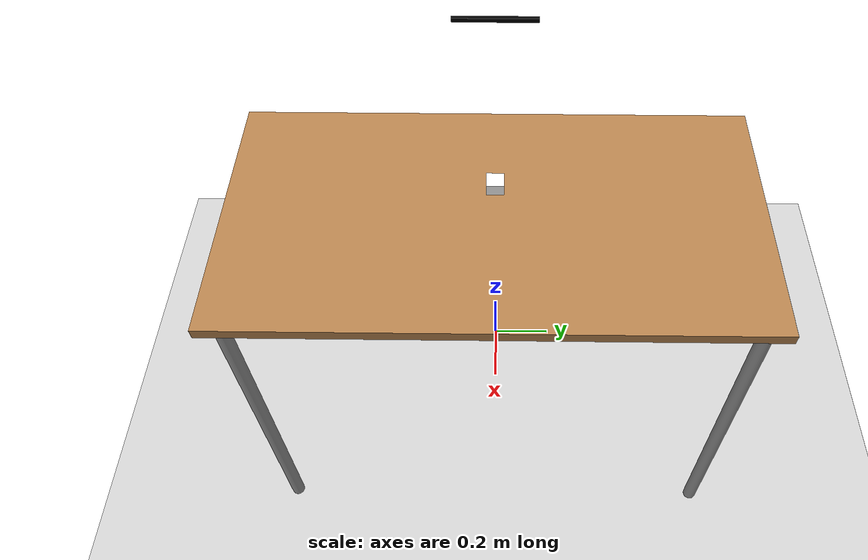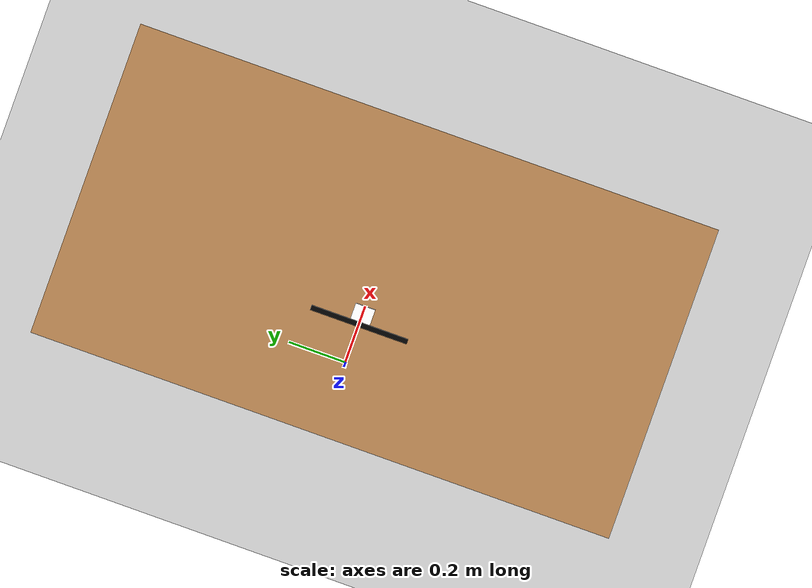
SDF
<?xml version="1.0" ?>
<sdf version="1.6">
  <world name="CRANE-X7 with Table">
    <scene>
      <shadows>0</shadows>
    </scene>

    <include>
      <uri>model://sun</uri>
    </include>

    <model name="table">
      <include>
        <uri>model://table</uri>
      </include>

      <!-- X7を机の端に配置するため、机を移動、回転する -->
      <pose>0.29 0 0 0 0 1.5708</pose>
    </model>

    <model name="wood_cube_5cm">
      <include>
        <uri>model://wood_cube_5cm</uri>
      </include>

      <pose>0.20 0 1.0 0 0 0</pose>
    </model>

    <!-- https://qiita.com/srs/items/ac242e46177c2b797a7b -->
    <model name="baton">
      <include>
    	<uri>model://baton</uri>
      </include>
      <pose> 0.20 0 1.06 0 0 0</pose>
    </model>

    <model name="ground_plane">
      <include>
        <uri>model://ground_plane</uri>
      </include>

      <joint name='ground_joint' type='fixed'>
        <parent>ground_plane::link</parent>
        <child>table::link</child>
      </joint>
    </model>
  </world>
</sdf>

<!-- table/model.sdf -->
<sdf version="1.5">
  <model name="table">
    <static>true</static>
    <link name="link">
      <collision name="surface">
        <pose>0 0 1.0 0 0 0</pose>
        <geometry>
          <box>
            <size>1.5 0.8 0.03</size>
          </box>
        </geometry>
        <surface>
          <friction>
            <ode>
              <mu>0.6</mu>
              <mu2>0.6</mu2>
            </ode>
          </friction>
        </surface>
      </collision>
      <visual name="visual1">
        <pose>0 0 1.0 0 0 0</pose>
        <geometry>
          <box>
            <size>1.5 0.8 0.03</size>
          </box>
        </geometry>
        <material>
          <script>
            <uri>model://media/materials/scripts/gazebo.material</uri>
            <name>Gazebo/Wood</name>
          </script>
        </material>
      </visual>
      <collision name="front_left_leg">
        <pose>0.68 0.38 0.5 0 0 0</pose>
        <geometry>
          <cylinder>
            <radius>0.02</radius>
            <length>1.0</length>
          </cylinder>
        </geometry>
      </collision>
      <visual name="front_left_leg">
        <pose>0.68 0.38 0.5 0 0 0</pose>
        <geometry>
          <cylinder>
            <radius>0.02</radius>
            <length>1.0</length>
          </cylinder>
        </geometry>
        <material>
          <script>
            <uri>model://media/materials/scripts/gazebo.material</uri>
            <name>Gazebo/Grey</name>
          </script>
        </material>
      </visual>
      <collision name="front_right_leg">
        <pose>0.68 -0.38 0.5 0 0 0</pose>
        <geometry>
          <cylinder>
            <radius>0.02</radius>
            <length>1.0</length>
          </cylinder>
        </geometry>
      </collision>
      <visual name="front_right_leg">
        <pose>0.68 -0.38 0.5 0 0 0</pose>
        <geometry>
          <cylinder>
            <radius>0.02</radius>
            <length>1.0</length>
          </cylinder>
        </geometry>
        <material>
          <script>
            <uri>model://media/materials/scripts/gazebo.material</uri>
            <name>Gazebo/Grey</name>
          </script>
        </material>
      </visual>
      <collision name="back_right_leg">
        <pose>-0.68 -0.38 0.5 0 0 0</pose>
        <geometry>
          <cylinder>
            <radius>0.02</radius>
            <length>1.0</length>
          </cylinder>
        </geometry>
      </collision>
      <visual name="back_right_leg">
        <pose>-0.68 -0.38 0.5 0 0 0</pose>
        <geometry>
          <cylinder>
            <radius>0.02</radius>
            <length>1.0</length>
          </cylinder>
        </geometry>
        <material>
          <script>
            <uri>model://media/materials/scripts/gazebo.material</uri>
            <name>Gazebo/Grey</name>
          </script>
        </material>
      </visual>
      <collision name="back_left_leg">
        <pose>-0.68 0.38 0.5 0 0 0</pose>
        <geometry>
          <cylinder>
            <radius>0.02</radius>
            <length>1.0</length>
          </cylinder>
        </geometry>
      </collision>
      <visual name="back_left_leg">
        <pose>-0.68 0.38 0.5 0 0 0</pose>
        <geometry>
          <cylinder>
            <radius>0.02</radius>
            <length>1.0</length>
          </cylinder>
        </geometry>
        <material>
          <script>
            <uri>model://media/materials/scripts/gazebo.material</uri>
            <name>Gazebo/Grey</name>
          </script>
        </material>
      </visual>
    </link>
  </model>
</sdf>

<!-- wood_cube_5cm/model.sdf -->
<sdf version="1.5">
  <model name="wood_cube_5cm">
    <link name="link">
      <pose>0 0 0.025 0 0 0</pose>
      <inertial>
        <mass>0.0565</mass>
        <inertia>
          <ixx>2.3541666666666672e-05</ixx>
          <ixy>0</ixy>
          <ixz>0</ixz>
          <iyy>2.3541666666666672e-05</iyy>
          <iyz>0</iyz>
          <izz>2.3541666666666672e-05</izz>
        </inertia>
      </inertial>

      <collision name="collision">
        <geometry>
          <box>
            <size>0.05 0.05 0.05</size>
          </box>
        </geometry>
        <surface>
          <contact>
            <!-- Red Pine coefficients for longitudinal axis of the wood
                 according to:
                 http://www.fpl.fs.fed.us/documnts/fplgtr/fplgtr113/ch04.pdf -->
            <poissons_ratio>0.347</poissons_ratio>
            <elastic_modulus>8.8e+09</elastic_modulus>
            <ode>
              <kp>100000</kp>
              <kd>1</kd>
              <max_vel>1.0</max_vel>
              <min_depth>0.001</min_depth>
            </ode>
          </contact>
          <friction>
            <torsional>
              <coefficient>1.0</coefficient>
              <use_patch_radius>0</use_patch_radius>
              <surface_radius>0.05</surface_radius>
            </torsional>
          </friction>
        </surface>
      </collision>

      <visual name="visual">
        <geometry>
          <box>
            <size>0.05 0.05 0.05</size>
          </box>
        </geometry>
        <material><diffuse>1 1 1 1</diffuse><specular>0.1 0.1 0.1 1</specular></material>
      </visual>

    </link>
  </model>
</sdf>

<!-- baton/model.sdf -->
<sdf version="1.5">
<model name="baton">
  <pose>0 0 0.5 0 0 0</pose>
    <link name="link">
      <collision name="collision">
        <geometry>
          <box>
            <size>0.01 0.2 0.01</size>
          </box>
        </geometry>
      </collision>
      <visual name="visual">
        <geometry>
          <box>
            <size>0.01 0.2 0.01</size>
          </box>
        </geometry>
        <!-- http://gazebosim.org/tutorials?tut=color_model -->
        <material> <!-- LED material -->
          <ambient>0 0 0 1</ambient>
          <diffuse>0 0 0 1</diffuse>
          <specular>0 0 0 0</specular>
          <emissive>0 1 0 1</emissive>
        </material> <!-- End LED material -->
      </visual>
    </link>
  </model>
</sdf>
